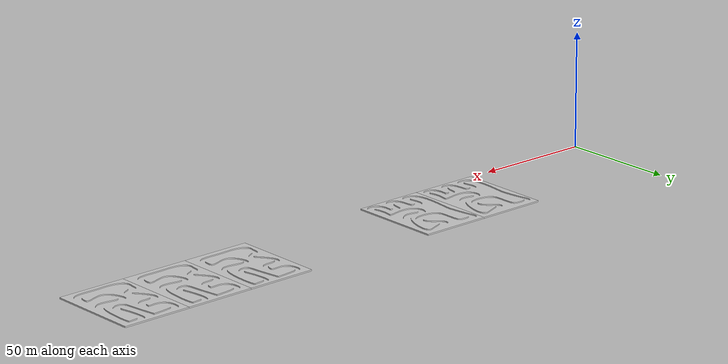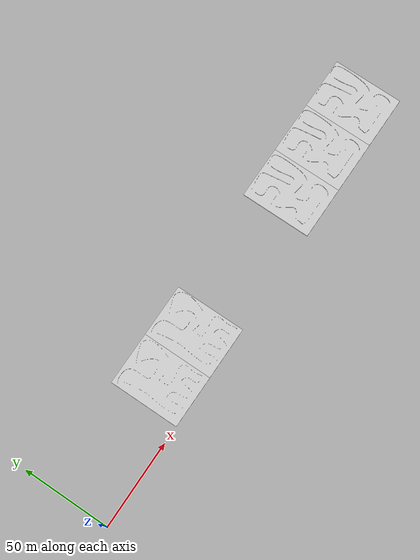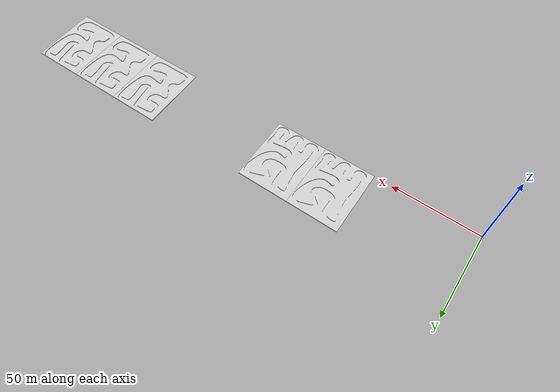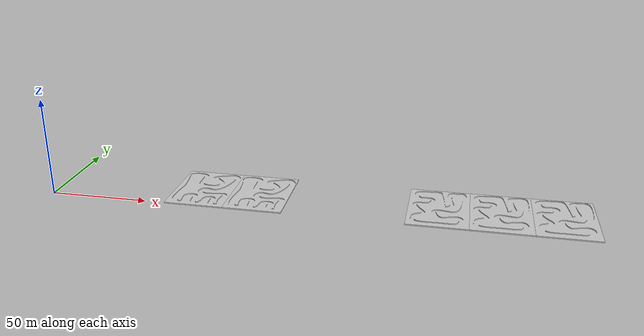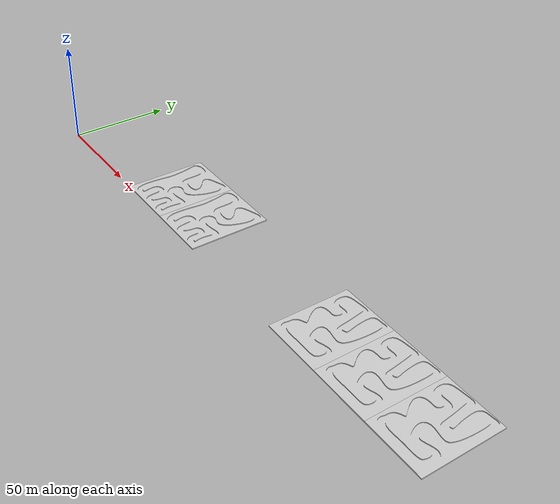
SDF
<sdf version="1.6">
 <world name="empty">
  <physics name="1ms" type="ignored">
   <max_step_size>0.001</max_step_size>
   <real_time_factor>10.0</real_time_factor>
  </physics>
  <plugin filename="gz-sim-physics-system" name="gz::sim::systems::Physics"/>
  <plugin filename="gz-sim-sensors-system" name="gz::sim::systems::Sensors">
   <render_engine>ogre2</render_engine>
  </plugin>
  <plugin filename="gz-sim-user-commands-system" name="gz::sim::systems::UserCommands"/>
  <plugin filename="gz-sim-scene-broadcaster-system" name="gz::sim::systems::SceneBroadcaster"/>
  <light type="directional" name="sun">
   <pose>0 0 10 0 0 0</pose>
   <diffuse>1 1 1 1</diffuse>
   <specular>0.5 0.5 0.5 1</specular>
   <attenuation>
    <range>1000</range>
    <constant>0.9</constant>
    <linear>0.01</linear>
    <quadratic>0.001</quadratic>
   </attenuation>
   <direction>-0.5 0.1 -0.9</direction>
  </light>
  <model name="test_track_01_250">
   <pose>60 0 0 0 0 0</pose>
   <static>true</static>
   <link name="track">
    <visual name="track_vis">
     <geometry><mesh><uri>../meshes/test_track_01_250.stl</uri><scale>0.001 0.001 0.001</scale></mesh></geometry>
     <material>
      <ambient>0.8 0.8 0.8 1</ambient>
      <diffuse>0.8 0.8 0.8 1</diffuse>
      <specular>0.8 0.8 0.8 1</specular>
     </material>
    </visual>
    <collision name="track_col">
     <geometry><mesh><uri>../meshes/test_track_01_250.stl</uri><scale>0.001 0.001 0.001</scale></mesh></geometry>
    </collision>
   </link>
  </model>
  <model name="test_track_01_300">
   <pose>90 0 0 0 0 0</pose>
   <static>true</static>
   <link name="track">
    <visual name="track_vis">
     <geometry><mesh><uri>../meshes/test_track_01_300.stl</uri><scale>0.001 0.001 0.001</scale></mesh></geometry>
     <material>
      <ambient>0.8 0.8 0.8 1</ambient>
      <diffuse>0.8 0.8 0.8 1</diffuse>
      <specular>0.8 0.8 0.8 1</specular>
     </material>
    </visual>
    <collision name="track_col">
     <geometry><mesh><uri>../meshes/test_track_01_300.stl</uri><scale>0.001 0.001 0.001</scale></mesh></geometry>
    </collision>
   </link>
  </model>
  <model name="test_track_02_200">
   <pose>180 0 0 0 0 0</pose>
   <static>true</static>
   <link name="track">
    <visual name="track_vis">
     <geometry><mesh><uri>../meshes/test_track_02_200.stl</uri><scale>0.001 0.001 0.001</scale></mesh></geometry>
     <material>
      <ambient>0.8 0.8 0.8 1</ambient>
      <diffuse>0.8 0.8 0.8 1</diffuse>
      <specular>0.8 0.8 0.8 1</specular>
     </material>
    </visual>
    <collision name="track_col">
     <geometry><mesh><uri>../meshes/test_track_02_200.stl</uri><scale>0.001 0.001 0.001</scale></mesh></geometry>
    </collision>
   </link>
  </model>
  <model name="test_track_02_250">
   <pose>210 0 0 0 0 0</pose>
   <static>true</static>
   <link name="track">
    <visual name="track_vis">
     <geometry><mesh><uri>../meshes/test_track_02_250.stl</uri><scale>0.001 0.001 0.001</scale></mesh></geometry>
     <material>
      <ambient>0.8 0.8 0.8 1</ambient>
      <diffuse>0.8 0.8 0.8 1</diffuse>
      <specular>0.8 0.8 0.8 1</specular>
     </material>
    </visual>
    <collision name="track_col">
     <geometry><mesh><uri>../meshes/test_track_02_250.stl</uri><scale>0.001 0.001 0.001</scale></mesh></geometry>
    </collision>
   </link>
  </model>
  <model name="test_track_02_300">
   <pose>240 0 0 0 0 0</pose>
   <static>true</static>
   <link name="track">
    <visual name="track_vis">
     <geometry><mesh><uri>../meshes/test_track_02_300.stl</uri><scale>0.001 0.001 0.001</scale></mesh></geometry>
     <material>
      <ambient>0.8 0.8 0.8 1</ambient>
      <diffuse>0.8 0.8 0.8 1</diffuse>
      <specular>0.8 0.8 0.8 1</specular>
     </material>
    </visual>
    <collision name="track_col">
     <geometry><mesh><uri>../meshes/test_track_02_300.stl</uri><scale>0.001 0.001 0.001</scale></mesh></geometry>
    </collision>
   </link>
  </model>
 </world>
</sdf>
